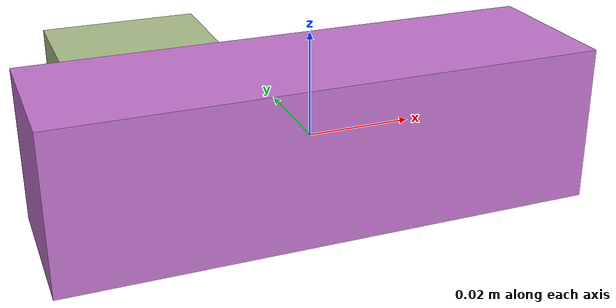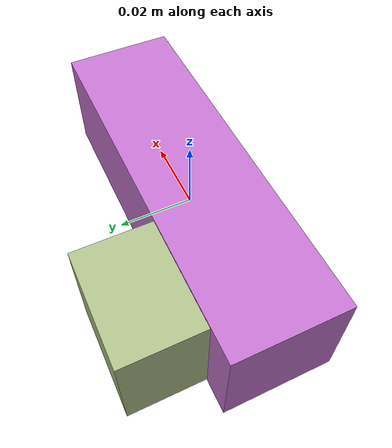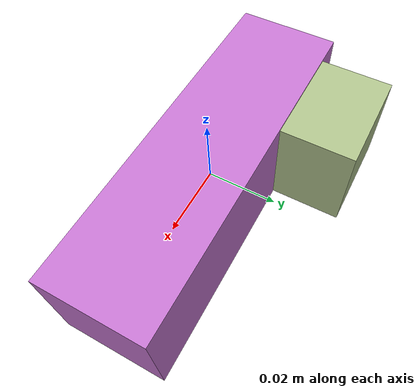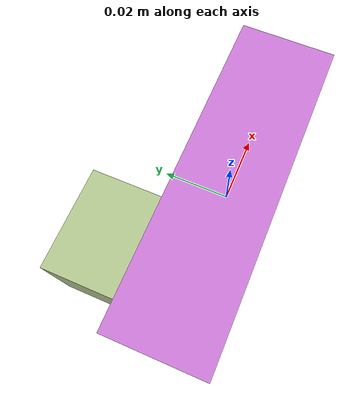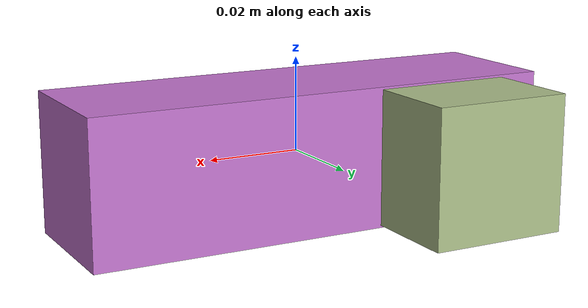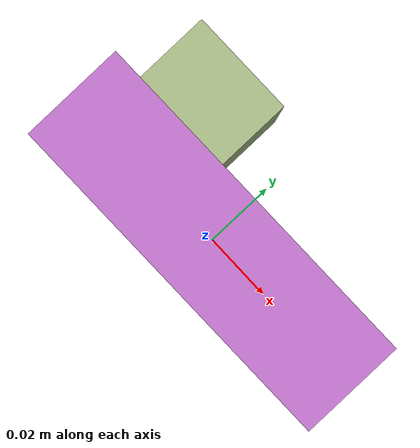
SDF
<sdf version="1.4"><world name="default"><model name="object0"><link name="link1"><pose>0 0 0 0 0 0</pose><inertial><pose>0 0 0 0 0 0</pose><mass>0.05503017137452548</mass><inertia><ixx>8.25452570617882e-06</ixx><ixy>0</ixy><iyy>5.175213581054766e-05</iyy><ixz>0</ixz><iyz>0</iyz><izz>5.175213581054766e-05</izz></inertia></inertial><visual name="link1_visual"><pose>0 0  0 0 0 0</pose><geometry><box><size>0.1019077247676398 0.03 0.03</size></box></geometry><material><diffuse>0.7702589128777488 0.4605056417079426 0.814750095880701 1</diffuse></material></visual><collision><pose>0 0  0 0 0 0</pose><geometry><box><size>0.1019077247676398 0.03 0.03</size></box></geometry></collision></link><link name="link2"><pose>-0.027126777621205942 0.013626585952226135 0 0 0 0</pose><inertial><pose>0 0 0 0 0 0</pose><mass>0.02428191529735248</mass><inertia><ixx>5.793233995026962e-06</ixx><ixy>0</ixy><iyy>3.5229012110575555e-06</iyy><ixz>0</ixz><iyz>0</iyz><izz>5.912620078572279e-06</izz></inertia></inertial><visual name="link2_visual"><pose>0 0  0 0 0 0</pose><geometry><box><size>0.03 0.04496650980991201 0.028999999999999998</size></box></geometry><material><diffuse>0.6792619918191247 0.7528009482067103 0.5446444832132643 1</diffuse></material></visual><collision><pose>0 0  0 0 0 0</pose><geometry><box><size>0.03 0.04496650980991201 0.028999999999999998</size></box></geometry></collision></link><joint name="link_joint_0" type="fixed"><parent>link1</parent><child>link2</child><pose>0 0 0 0 0 0</pose><axis><xyz>0 0 1</xyz></axis></joint></model></world></sdf>
